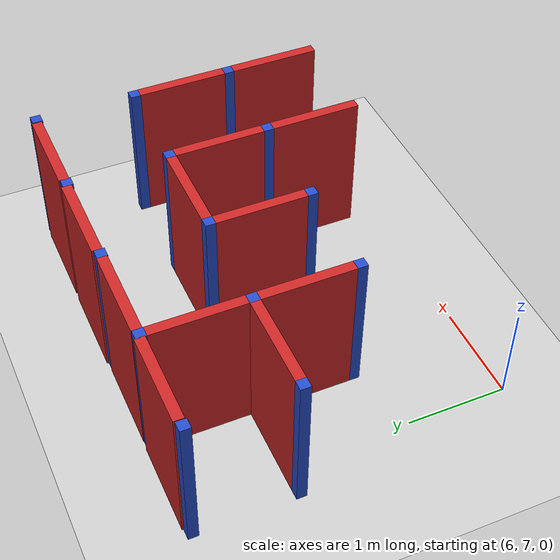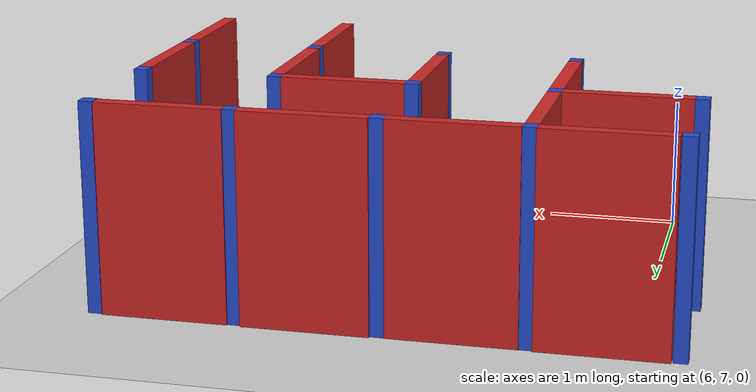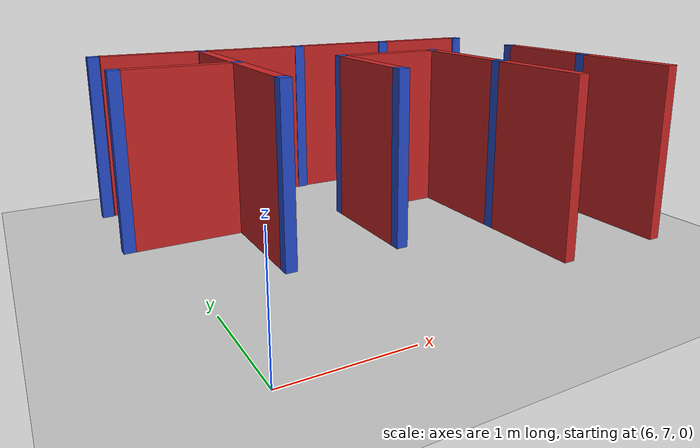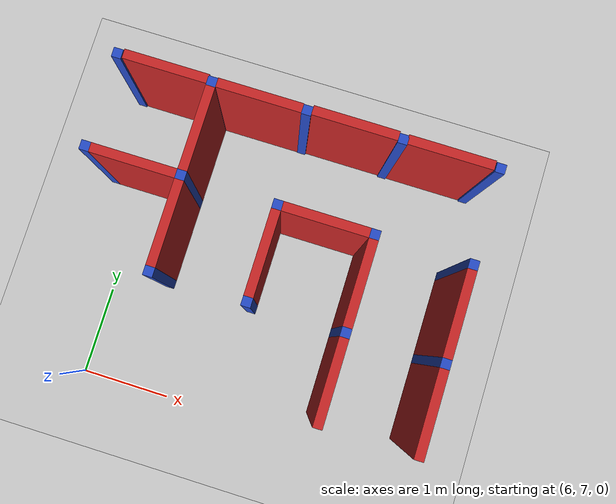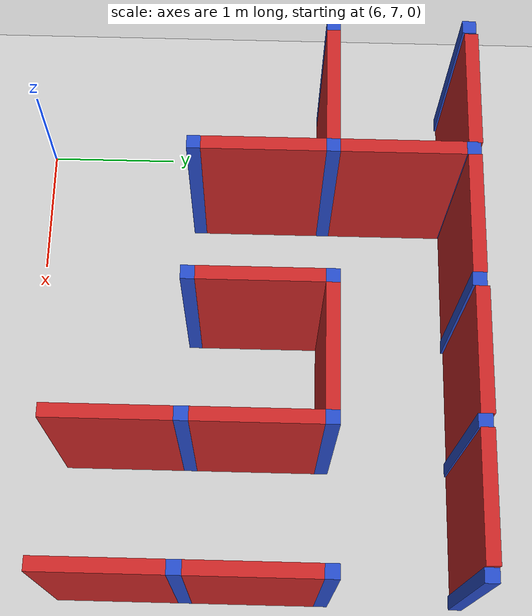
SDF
<sdf version="1.7">
 <world name="default">
  <model name="ground_plane">
   <static>1</static>
   <link name="link">
    <collision name="collision">
     <geometry><plane><normal>0 0 1</normal><size>100 100</size></plane></geometry>
     <surface><friction><ode><mu>100</mu><mu2>50</mu2></ode></friction></surface>
    </collision>
    <visual name="visual">
     <cast_shadows>0</cast_shadows>
     <geometry><plane><normal>0 0 1</normal><size>100 100</size></plane></geometry>
     <material>
      <script><uri>file://media/materials/scripts/gazebo.material</uri><name>Gazebo/Grey</name></script>
     </material>
    </visual>
   </link>
  </model>
  <model name="maze_demo">
   <link name="Joint_11_-5">
    <pose>11 -5 0 0 -0 0</pose>
    <visual name="Wall_2_Visual">
     <pose>0 0 0.75 0 -0 0</pose>
     <geometry><box><size>0.1 0.1 1.5</size></box></geometry>
     <material>
      <script><uri>file://media/materials/scripts/gazebo.material</uri><name>Gazebo/Blue</name></script>
      <ambient>0.996078 0.47451 0.0196078 1</ambient>
      <shader type="pixel"/>
     </material>
     <meta><layer>0</layer></meta>
    </visual>
    <collision name="Wall_2_Collision">
     <pose>0 0 0.75 0 -0 0</pose>
     <geometry><box><size>0.1 0.1 1.5</size></box></geometry>
     <surface>
      <friction>
       <ode><mu>1</mu><mu2>1</mu2><fdir1>0 0 0</fdir1><slip1>0</slip1><slip2>0</slip2></ode>
       <torsional>
        <coefficient>1</coefficient>
        <patch_radius>0</patch_radius>
        <surface_radius>0</surface_radius>
        <use_patch_radius>1</use_patch_radius>
        <ode><slip>0</slip></ode>
       </torsional>
      </friction>
      <bounce><restitution_coefficient>0</restitution_coefficient><threshold>1e+06</threshold></bounce>
      <contact>
       <collide_without_contact>0</collide_without_contact>
       <collide_without_contact_bitmask>1</collide_without_contact_bitmask>
       <collide_bitmask>1</collide_bitmask>
       <ode>
        <soft_cfm>0</soft_cfm>
        <soft_erp>0.2</soft_erp>
        <kp>1e+13</kp>
        <kd>1</kd>
        <max_vel>0.01</max_vel>
        <min_depth>0</min_depth>
       </ode>
       <bullet>
        <split_impulse>1</split_impulse>
        <split_impulse_penetration_threshold>-0.01</split_impulse_penetration_threshold>
        <soft_cfm>0</soft_cfm>
        <soft_erp>0.2</soft_erp>
        <kp>1e+13</kp>
        <kd>1</kd>
       </bullet>
      </contact>
     </surface>
    </collision>
   </link>
   <link name="Joint_11_-6">
    <pose>11 -6 0 0 -0 0</pose>
    <visual name="Wall_2_Visual">
     <pose>0 0 0.75 0 -0 0</pose>
     <geometry><box><size>0.1 0.1 1.5</size></box></geometry>
     <material>
      <script><uri>file://media/materials/scripts/gazebo.material</uri><name>Gazebo/Blue</name></script>
      <ambient>0.996078 0.47451 0.0196078 1</ambient>
      <shader type="pixel"/>
     </material>
     <meta><layer>0</layer></meta>
    </visual>
    <collision name="Wall_2_Collision">
     <pose>0 0 0.75 0 -0 0</pose>
     <geometry><box><size>0.1 0.1 1.5</size></box></geometry>
     <surface>
      <friction>
       <ode><mu>1</mu><mu2>1</mu2><fdir1>0 0 0</fdir1><slip1>0</slip1><slip2>0</slip2></ode>
       <torsional>
        <coefficient>1</coefficient>
        <patch_radius>0</patch_radius>
        <surface_radius>0</surface_radius>
        <use_patch_radius>1</use_patch_radius>
        <ode><slip>0</slip></ode>
       </torsional>
      </friction>
      <bounce><restitution_coefficient>0</restitution_coefficient><threshold>1e+06</threshold></bounce>
      <contact>
       <collide_without_contact>0</collide_without_contact>
       <collide_without_contact_bitmask>1</collide_without_contact_bitmask>
       <collide_bitmask>1</collide_bitmask>
       <ode>
        <soft_cfm>0</soft_cfm>
        <soft_erp>0.2</soft_erp>
        <kp>1e+13</kp>
        <kd>1</kd>
        <max_vel>0.01</max_vel>
        <min_depth>0</min_depth>
       </ode>
       <bullet>
        <split_impulse>1</split_impulse>
        <split_impulse_penetration_threshold>-0.01</split_impulse_penetration_threshold>
        <soft_cfm>0</soft_cfm>
        <soft_erp>0.2</soft_erp>
        <kp>1e+13</kp>
        <kd>1</kd>
       </bullet>
      </contact>
     </surface>
    </collision>
   </link>
   <link name="Joint_12_-5">
    <pose>12 -5 0 0 -0 0</pose>
    <visual name="Wall_2_Visual">
     <pose>0 0 0.75 0 -0 0</pose>
     <geometry><box><size>0.1 0.1 1.5</size></box></geometry>
     <material>
      <script><uri>file://media/materials/scripts/gazebo.material</uri><name>Gazebo/Blue</name></script>
      <ambient>0.996078 0.47451 0.0196078 1</ambient>
      <shader type="pixel"/>
     </material>
     <meta><layer>0</layer></meta>
    </visual>
    <collision name="Wall_2_Collision">
     <pose>0 0 0.75 0 -0 0</pose>
     <geometry><box><size>0.1 0.1 1.5</size></box></geometry>
     <surface>
      <friction>
       <ode><mu>1</mu><mu2>1</mu2><fdir1>0 0 0</fdir1><slip1>0</slip1><slip2>0</slip2></ode>
       <torsional>
        <coefficient>1</coefficient>
        <patch_radius>0</patch_radius>
        <surface_radius>0</surface_radius>
        <use_patch_radius>1</use_patch_radius>
        <ode><slip>0</slip></ode>
       </torsional>
      </friction>
      <bounce><restitution_coefficient>0</restitution_coefficient><threshold>1e+06</threshold></bounce>
      <contact>
       <collide_without_contact>0</collide_without_contact>
       <collide_without_contact_bitmask>1</collide_without_contact_bitmask>
       <collide_bitmask>1</collide_bitmask>
       <ode>
        <soft_cfm>0</soft_cfm>
        <soft_erp>0.2</soft_erp>
        <kp>1e+13</kp>
        <kd>1</kd>
        <max_vel>0.01</max_vel>
        <min_depth>0</min_depth>
       </ode>
       <bullet>
        <split_impulse>1</split_impulse>
        <split_impulse_penetration_threshold>-0.01</split_impulse_penetration_threshold>
        <soft_cfm>0</soft_cfm>
        <soft_erp>0.2</soft_erp>
        <kp>1e+13</kp>
        <kd>1</kd>
       </bullet>
      </contact>
     </surface>
    </collision>
   </link>
   <link name="Joint_12_-6">
    <pose>12 -6 0 0 -0 0</pose>
    <visual name="Wall_2_Visual">
     <pose>0 0 0.75 0 -0 0</pose>
     <geometry><box><size>0.1 0.1 1.5</size></box></geometry>
     <material>
      <script><uri>file://media/materials/scripts/gazebo.material</uri><name>Gazebo/Blue</name></script>
      <ambient>0.996078 0.47451 0.0196078 1</ambient>
      <shader type="pixel"/>
     </material>
     <meta><layer>0</layer></meta>
    </visual>
    <collision name="Wall_2_Collision">
     <pose>0 0 0.75 0 -0 0</pose>
     <geometry><box><size>0.1 0.1 1.5</size></box></geometry>
     <surface>
      <friction>
       <ode><mu>1</mu><mu2>1</mu2><fdir1>0 0 0</fdir1><slip1>0</slip1><slip2>0</slip2></ode>
       <torsional>
        <coefficient>1</coefficient>
        <patch_radius>0</patch_radius>
        <surface_radius>0</surface_radius>
        <use_patch_radius>1</use_patch_radius>
        <ode><slip>0</slip></ode>
       </torsional>
      </friction>
      <bounce><restitution_coefficient>0</restitution_coefficient><threshold>1e+06</threshold></bounce>
      <contact>
       <collide_without_contact>0</collide_without_contact>
       <collide_without_contact_bitmask>1</collide_without_contact_bitmask>
       <collide_bitmask>1</collide_bitmask>
       <ode>
        <soft_cfm>0</soft_cfm>
        <soft_erp>0.2</soft_erp>
        <kp>1e+13</kp>
        <kd>1</kd>
        <max_vel>0.01</max_vel>
        <min_depth>0</min_depth>
       </ode>
       <bullet>
        <split_impulse>1</split_impulse>
        <split_impulse_penetration_threshold>-0.01</split_impulse_penetration_threshold>
        <soft_cfm>0</soft_cfm>
        <soft_erp>0.2</soft_erp>
        <kp>1e+13</kp>
        <kd>1</kd>
       </bullet>
      </contact>
     </surface>
    </collision>
   </link>
   <link name="Joint_12_-7">
    <pose>12 -7 0 0 -0 0</pose>
    <visual name="Wall_2_Visual">
     <pose>0 0 0.75 0 -0 0</pose>
     <geometry><box><size>0.1 0.1 1.5</size></box></geometry>
     <material>
      <script><uri>file://media/materials/scripts/gazebo.material</uri><name>Gazebo/Blue</name></script>
      <ambient>0.996078 0.47451 0.0196078 1</ambient>
      <shader type="pixel"/>
     </material>
     <meta><layer>0</layer></meta>
    </visual>
    <collision name="Wall_2_Collision">
     <pose>0 0 0.75 0 -0 0</pose>
     <geometry><box><size>0.1 0.1 1.5</size></box></geometry>
     <surface>
      <friction>
       <ode><mu>1</mu><mu2>1</mu2><fdir1>0 0 0</fdir1><slip1>0</slip1><slip2>0</slip2></ode>
       <torsional>
        <coefficient>1</coefficient>
        <patch_radius>0</patch_radius>
        <surface_radius>0</surface_radius>
        <use_patch_radius>1</use_patch_radius>
        <ode><slip>0</slip></ode>
       </torsional>
      </friction>
      <bounce><restitution_coefficient>0</restitution_coefficient><threshold>1e+06</threshold></bounce>
      <contact>
       <collide_without_contact>0</collide_without_contact>
       <collide_without_contact_bitmask>1</collide_without_contact_bitmask>
       <collide_bitmask>1</collide_bitmask>
       <ode>
        <soft_cfm>0</soft_cfm>
        <soft_erp>0.2</soft_erp>
        <kp>1e+13</kp>
        <kd>1</kd>
        <max_vel>0.01</max_vel>
        <min_depth>0</min_depth>
       </ode>
       <bullet>
        <split_impulse>1</split_impulse>
        <split_impulse_penetration_threshold>-0.01</split_impulse_penetration_threshold>
        <soft_cfm>0</soft_cfm>
        <soft_erp>0.2</soft_erp>
        <kp>1e+13</kp>
        <kd>1</kd>
       </bullet>
      </contact>
     </surface>
    </collision>
   </link>
   <link name="Joint_13_-5">
    <pose>13 -5 0 0 -0 0</pose>
    <visual name="Wall_2_Visual">
     <pose>0 0 0.75 0 -0 0</pose>
     <geometry><box><size>0.1 0.1 1.5</size></box></geometry>
     <material>
      <script><uri>file://media/materials/scripts/gazebo.material</uri><name>Gazebo/Blue</name></script>
      <ambient>0.996078 0.47451 0.0196078 1</ambient>
      <shader type="pixel"/>
     </material>
     <meta><layer>0</layer></meta>
    </visual>
    <collision name="Wall_2_Collision">
     <pose>0 0 0.75 0 -0 0</pose>
     <geometry><box><size>0.1 0.1 1.5</size></box></geometry>
     <surface>
      <friction>
       <ode><mu>1</mu><mu2>1</mu2><fdir1>0 0 0</fdir1><slip1>0</slip1><slip2>0</slip2></ode>
       <torsional>
        <coefficient>1</coefficient>
        <patch_radius>0</patch_radius>
        <surface_radius>0</surface_radius>
        <use_patch_radius>1</use_patch_radius>
        <ode><slip>0</slip></ode>
       </torsional>
      </friction>
      <bounce><restitution_coefficient>0</restitution_coefficient><threshold>1e+06</threshold></bounce>
      <contact>
       <collide_without_contact>0</collide_without_contact>
       <collide_without_contact_bitmask>1</collide_without_contact_bitmask>
       <collide_bitmask>1</collide_bitmask>
       <ode>
        <soft_cfm>0</soft_cfm>
        <soft_erp>0.2</soft_erp>
        <kp>1e+13</kp>
        <kd>1</kd>
        <max_vel>0.01</max_vel>
        <min_depth>0</min_depth>
       </ode>
       <bullet>
        <split_impulse>1</split_impulse>
        <split_impulse_penetration_threshold>-0.01</split_impulse_penetration_threshold>
        <soft_cfm>0</soft_cfm>
        <soft_erp>0.2</soft_erp>
        <kp>1e+13</kp>
        <kd>1</kd>
       </bullet>
      </contact>
     </surface>
    </collision>
   </link>
   <link name="Joint_13_-6">
    <pose>13 -6 0 0 -0 0</pose>
    <visual name="Wall_2_Visual">
     <pose>0 0 0.75 0 -0 0</pose>
     <geometry><box><size>0.1 0.1 1.5</size></box></geometry>
     <material>
      <script><uri>file://media/materials/scripts/gazebo.material</uri><name>Gazebo/Blue</name></script>
      <ambient>0.996078 0.47451 0.0196078 1</ambient>
      <shader type="pixel"/>
     </material>
     <meta><layer>0</layer></meta>
    </visual>
    <collision name="Wall_2_Collision">
     <pose>0 0 0.75 0 -0 0</pose>
     <geometry><box><size>0.1 0.1 1.5</size></box></geometry>
     <surface>
      <friction>
       <ode><mu>1</mu><mu2>1</mu2><fdir1>0 0 0</fdir1><slip1>0</slip1><slip2>0</slip2></ode>
       <torsional>
        <coefficient>1</coefficient>
        <patch_radius>0</patch_radius>
        <surface_radius>0</surface_radius>
        <use_patch_radius>1</use_patch_radius>
        <ode><slip>0</slip></ode>
       </torsional>
      </friction>
      <bounce><restitution_coefficient>0</restitution_coefficient><threshold>1e+06</threshold></bounce>
      <contact>
       <collide_without_contact>0</collide_without_contact>
       <collide_without_contact_bitmask>1</collide_without_contact_bitmask>
       <collide_bitmask>1</collide_bitmask>
       <ode>
        <soft_cfm>0</soft_cfm>
        <soft_erp>0.2</soft_erp>
        <kp>1e+13</kp>
        <kd>1</kd>
        <max_vel>0.01</max_vel>
        <min_depth>0</min_depth>
       </ode>
       <bullet>
        <split_impulse>1</split_impulse>
        <split_impulse_penetration_threshold>-0.01</split_impulse_penetration_threshold>
        <soft_cfm>0</soft_cfm>
        <soft_erp>0.2</soft_erp>
        <kp>1e+13</kp>
        <kd>1</kd>
       </bullet>
      </contact>
     </surface>
    </collision>
   </link>
   <link name="Joint_13_-7">
    <pose>13 -7 0 0 -0 0</pose>
    <visual name="Wall_2_Visual">
     <pose>0 0 0.75 0 -0 0</pose>
     <geometry><box><size>0.1 0.1 1.5</size></box></geometry>
     <material>
      <script><uri>file://media/materials/scripts/gazebo.material</uri><name>Gazebo/Blue</name></script>
      <ambient>0.996078 0.47451 0.0196078 1</ambient>
      <shader type="pixel"/>
     </material>
     <meta><layer>0</layer></meta>
    </visual>
    <collision name="Wall_2_Collision">
     <pose>0 0 0.75 0 -0 0</pose>
     <geometry><box><size>0.1 0.1 1.5</size></box></geometry>
     <surface>
      <friction>
       <ode><mu>1</mu><mu2>1</mu2><fdir1>0 0 0</fdir1><slip1>0</slip1><slip2>0</slip2></ode>
       <torsional>
        <coefficient>1</coefficient>
        <patch_radius>0</patch_radius>
        <surface_radius>0</surface_radius>
        <use_patch_radius>1</use_patch_radius>
        <ode><slip>0</slip></ode>
       </torsional>
      </friction>
      <bounce><restitution_coefficient>0</restitution_coefficient><threshold>1e+06</threshold></bounce>
      <contact>
       <collide_without_contact>0</collide_without_contact>
       <collide_without_contact_bitmask>1</collide_without_contact_bitmask>
       <collide_bitmask>1</collide_bitmask>
       <ode>
        <soft_cfm>0</soft_cfm>
        <soft_erp>0.2</soft_erp>
        <kp>1e+13</kp>
        <kd>1</kd>
        <max_vel>0.01</max_vel>
        <min_depth>0</min_depth>
       </ode>
       <bullet>
        <split_impulse>1</split_impulse>
        <split_impulse_penetration_threshold>-0.01</split_impulse_penetration_threshold>
        <soft_cfm>0</soft_cfm>
        <soft_erp>0.2</soft_erp>
        <kp>1e+13</kp>
        <kd>1</kd>
       </bullet>
      </contact>
     </surface>
    </collision>
   </link>
   <link name="Joint_14_-5">
    <pose>14 -5 0 0 -0 0</pose>
    <visual name="Wall_2_Visual">
     <pose>0 0 0.75 0 -0 0</pose>
     <geometry><box><size>0.1 0.1 1.5</size></box></geometry>
     <material>
      <script><uri>file://media/materials/scripts/gazebo.material</uri><name>Gazebo/Blue</name></script>
      <ambient>0.996078 0.47451 0.0196078 1</ambient>
      <shader type="pixel"/>
     </material>
     <meta><layer>0</layer></meta>
    </visual>
    <collision name="Wall_2_Collision">
     <pose>0 0 0.75 0 -0 0</pose>
     <geometry><box><size>0.1 0.1 1.5</size></box></geometry>
     <surface>
      <friction>
       <ode><mu>1</mu><mu2>1</mu2><fdir1>0 0 0</fdir1><slip1>0</slip1><slip2>0</slip2></ode>
       <torsional>
        <coefficient>1</coefficient>
        <patch_radius>0</patch_radius>
        <surface_radius>0</surface_radius>
        <use_patch_radius>1</use_patch_radius>
        <ode><slip>0</slip></ode>
       </torsional>
      </friction>
      <bounce><restitution_coefficient>0</restitution_coefficient><threshold>1e+06</threshold></bounce>
      <contact>
       <collide_without_contact>0</collide_without_contact>
       <collide_without_contact_bitmask>1</collide_without_contact_bitmask>
       <collide_bitmask>1</collide_bitmask>
       <ode>
        <soft_cfm>0</soft_cfm>
        <soft_erp>0.2</soft_erp>
        <kp>1e+13</kp>
        <kd>1</kd>
        <max_vel>0.01</max_vel>
        <min_depth>0</min_depth>
       </ode>
       <bullet>
        <split_impulse>1</split_impulse>
        <split_impulse_penetration_threshold>-0.01</split_impulse_penetration_threshold>
        <soft_cfm>0</soft_cfm>
        <soft_erp>0.2</soft_erp>
        <kp>1e+13</kp>
        <kd>1</kd>
       </bullet>
      </contact>
     </surface>
    </collision>
   </link>
   <link name="Joint_14_-6">
    <pose>14 -6 0 0 -0 0</pose>
    <visual name="Wall_2_Visual">
     <pose>0 0 0.75 0 -0 0</pose>
     <geometry><box><size>0.1 0.1 1.5</size></box></geometry>
     <material>
      <script><uri>file://media/materials/scripts/gazebo.material</uri><name>Gazebo/Blue</name></script>
      <ambient>0.996078 0.47451 0.0196078 1</ambient>
      <shader type="pixel"/>
     </material>
     <meta><layer>0</layer></meta>
    </visual>
    <collision name="Wall_2_Collision">
     <pose>0 0 0.75 0 -0 0</pose>
     <geometry><box><size>0.1 0.1 1.5</size></box></geometry>
     <surface>
      <friction>
       <ode><mu>1</mu><mu2>1</mu2><fdir1>0 0 0</fdir1><slip1>0</slip1><slip2>0</slip2></ode>
       <torsional>
        <coefficient>1</coefficient>
        <patch_radius>0</patch_radius>
        <surface_radius>0</surface_radius>
        <use_patch_radius>1</use_patch_radius>
        <ode><slip>0</slip></ode>
       </torsional>
      </friction>
      <bounce><restitution_coefficient>0</restitution_coefficient><threshold>1e+06</threshold></bounce>
      <contact>
       <collide_without_contact>0</collide_without_contact>
       <collide_without_contact_bitmask>1</collide_without_contact_bitmask>
       <collide_bitmask>1</collide_bitmask>
       <ode>
        <soft_cfm>0</soft_cfm>
        <soft_erp>0.2</soft_erp>
        <kp>1e+13</kp>
        <kd>1</kd>
        <max_vel>0.01</max_vel>
        <min_depth>0</min_depth>
       </ode>
       <bullet>
        <split_impulse>1</split_impulse>
        <split_impulse_penetration_threshold>-0.01</split_impulse_penetration_threshold>
        <soft_cfm>0</soft_cfm>
        <soft_erp>0.2</soft_erp>
        <kp>1e+13</kp>
        <kd>1</kd>
       </bullet>
      </contact>
     </surface>
    </collision>
   </link>
   <link name="Joint_14_-7">
    <pose>14 -7 0 0 -0 0</pose>
    <visual name="Wall_2_Visual">
     <pose>0 0 0.75 0 -0 0</pose>
     <geometry><box><size>0.1 0.1 1.5</size></box></geometry>
     <material>
      <script><uri>file://media/materials/scripts/gazebo.material</uri><name>Gazebo/Blue</name></script>
      <ambient>0.996078 0.47451 0.0196078 1</ambient>
      <shader type="pixel"/>
     </material>
     <meta><layer>0</layer></meta>
    </visual>
    <collision name="Wall_2_Collision">
     <pose>0 0 0.75 0 -0 0</pose>
     <geometry><box><size>0.1 0.1 1.5</size></box></geometry>
     <surface>
      <friction>
       <ode><mu>1</mu><mu2>1</mu2><fdir1>0 0 0</fdir1><slip1>0</slip1><slip2>0</slip2></ode>
       <torsional>
        <coefficient>1</coefficient>
        <patch_radius>0</patch_radius>
        <surface_radius>0</surface_radius>
        <use_patch_radius>1</use_patch_radius>
        <ode><slip>0</slip></ode>
       </torsional>
      </friction>
      <bounce><restitution_coefficient>0</restitution_coefficient><threshold>1e+06</threshold></bounce>
      <contact>
       <collide_without_contact>0</collide_without_contact>
       <collide_without_contact_bitmask>1</collide_without_contact_bitmask>
       <collide_bitmask>1</collide_bitmask>
       <ode>
        <soft_cfm>0</soft_cfm>
        <soft_erp>0.2</soft_erp>
        <kp>1e+13</kp>
        <kd>1</kd>
        <max_vel>0.01</max_vel>
        <min_depth>0</min_depth>
       </ode>
       <bullet>
        <split_impulse>1</split_impulse>
        <split_impulse_penetration_threshold>-0.01</split_impulse_penetration_threshold>
        <soft_cfm>0</soft_cfm>
        <soft_erp>0.2</soft_erp>
        <kp>1e+13</kp>
        <kd>1</kd>
       </bullet>
      </contact>
     </surface>
    </collision>
   </link>
   <link name="Joint_15_-5">
    <pose>15 -5 0 0 -0 0</pose>
    <visual name="Wall_2_Visual">
     <pose>0 0 0.75 0 -0 0</pose>
     <geometry><box><size>0.1 0.1 1.5</size></box></geometry>
     <material>
      <script><uri>file://media/materials/scripts/gazebo.material</uri><name>Gazebo/Blue</name></script>
      <ambient>0.996078 0.47451 0.0196078 1</ambient>
      <shader type="pixel"/>
     </material>
     <meta><layer>0</layer></meta>
    </visual>
    <collision name="Wall_2_Collision">
     <pose>0 0 0.75 0 -0 0</pose>
     <geometry><box><size>0.1 0.1 1.5</size></box></geometry>
     <surface>
      <friction>
       <ode><mu>1</mu><mu2>1</mu2><fdir1>0 0 0</fdir1><slip1>0</slip1><slip2>0</slip2></ode>
       <torsional>
        <coefficient>1</coefficient>
        <patch_radius>0</patch_radius>
        <surface_radius>0</surface_radius>
        <use_patch_radius>1</use_patch_radius>
        <ode><slip>0</slip></ode>
       </torsional>
      </friction>
      <bounce><restitution_coefficient>0</restitution_coefficient><threshold>1e+06</threshold></bounce>
      <contact>
       <collide_without_contact>0</collide_without_contact>
       <collide_without_contact_bitmask>1</collide_without_contact_bitmask>
       <collide_bitmask>1</collide_bitmask>
       <ode>
        <soft_cfm>0</soft_cfm>
        <soft_erp>0.2</soft_erp>
        <kp>1e+13</kp>
        <kd>1</kd>
        <max_vel>0.01</max_vel>
        <min_depth>0</min_depth>
       </ode>
       <bullet>
        <split_impulse>1</split_impulse>
        <split_impulse_penetration_threshold>-0.01</split_impulse_penetration_threshold>
        <soft_cfm>0</soft_cfm>
        <soft_erp>0.2</soft_erp>
        <kp>1e+13</kp>
        <kd>1</kd>
       </bullet>
      </contact>
     </surface>
    </collision>
   </link>
   <link name="Joint_15_-6">
    <pose>15 -6 0 0 -0 0</pose>
    <visual name="Wall_2_Visual">
     <pose>0 0 0.75 0 -0 0</pose>
     <geometry><box><size>0.1 0.1 1.5</size></box></geometry>
     <material>
      <script><uri>file://media/materials/scripts/gazebo.material</uri><name>Gazebo/Blue</name></script>
      <ambient>0.996078 0.47451 0.0196078 1</ambient>
      <shader type="pixel"/>
     </material>
     <meta><layer>0</layer></meta>
    </visual>
    <collision name="Wall_2_Collision">
     <pose>0 0 0.75 0 -0 0</pose>
     <geometry><box><size>0.1 0.1 1.5</size></box></geometry>
     <surface>
      <friction>
       <ode><mu>1</mu><mu2>1</mu2><fdir1>0 0 0</fdir1><slip1>0</slip1><slip2>0</slip2></ode>
       <torsional>
        <coefficient>1</coefficient>
        <patch_radius>0</patch_radius>
        <surface_radius>0</surface_radius>
        <use_patch_radius>1</use_patch_radius>
        <ode><slip>0</slip></ode>
       </torsional>
      </friction>
      <bounce><restitution_coefficient>0</restitution_coefficient><threshold>1e+06</threshold></bounce>
      <contact>
       <collide_without_contact>0</collide_without_contact>
       <collide_without_contact_bitmask>1</collide_without_contact_bitmask>
       <collide_bitmask>1</collide_bitmask>
       <ode>
        <soft_cfm>0</soft_cfm>
        <soft_erp>0.2</soft_erp>
        <kp>1e+13</kp>
        <kd>1</kd>
        <max_vel>0.01</max_vel>
        <min_depth>0</min_depth>
       </ode>
       <bullet>
        <split_impulse>1</split_impulse>
        <split_impulse_penetration_threshold>-0.01</split_impulse_penetration_threshold>
        <soft_cfm>0</soft_cfm>
        <soft_erp>0.2</soft_erp>
        <kp>1e+13</kp>
        <kd>1</kd>
       </bullet>
      </contact>
     </surface>
    </collision>
   </link>
   <link name="Joint_15_-7">
    <pose>15 -7 0 0 -0 0</pose>
    <visual name="Wall_2_Visual">
     <pose>0 0 0.75 0 -0 0</pose>
     <geometry><box><size>0.1 0.1 1.5</size></box></geometry>
     <material>
      <script><uri>file://media/materials/scripts/gazebo.material</uri><name>Gazebo/Blue</name></script>
      <ambient>0.996078 0.47451 0.0196078 1</ambient>
      <shader type="pixel"/>
     </material>
     <meta><layer>0</layer></meta>
    </visual>
    <collision name="Wall_2_Collision">
     <pose>0 0 0.75 0 -0 0</pose>
     <geometry><box><size>0.1 0.1 1.5</size></box></geometry>
     <surface>
      <friction>
       <ode><mu>1</mu><mu2>1</mu2><fdir1>0 0 0</fdir1><slip1>0</slip1><slip2>0</slip2></ode>
       <torsional>
        <coefficient>1</coefficient>
        <patch_radius>0</patch_radius>
        <surface_radius>0</surface_radius>
        <use_patch_radius>1</use_patch_radius>
        <ode><slip>0</slip></ode>
       </torsional>
      </friction>
      <bounce><restitution_coefficient>0</restitution_coefficient><threshold>1e+06</threshold></bounce>
      <contact>
       <collide_without_contact>0</collide_without_contact>
       <collide_without_contact_bitmask>1</collide_without_contact_bitmask>
       <collide_bitmask>1</collide_bitmask>
       <ode>
        <soft_cfm>0</soft_cfm>
        <soft_erp>0.2</soft_erp>
        <kp>1e+13</kp>
        <kd>1</kd>
        <max_vel>0.01</max_vel>
        <min_depth>0</min_depth>
       </ode>
       <bullet>
        <split_impulse>1</split_impulse>
        <split_impulse_penetration_threshold>-0.01</split_impulse_penetration_threshold>
        <soft_cfm>0</soft_cfm>
        <soft_erp>0.2</soft_erp>
        <kp>1e+13</kp>
        <kd>1</kd>
       </bullet>
      </contact>
     </surface>
    </collision>
   </link>
   <link name="Wall_10_3_h">
    <pose>11.5077 -4.98672 0 0 -0 0</pose>
    <visual name="Wall_0_Visual">
     <pose>0 0 0.75 0 -0 0</pose>
     <geometry><box><size>0.9 0.1 1.5</size></box></geometry>
     <material>
      <script><uri>file://media/materials/scripts/gazebo.material</uri><name>Gazebo/Red</name></script>
      <ambient>0.921569 0.807843 0.615686 1</ambient>
      <shader type="pixel"/>
     </material>
     <meta><layer>0</layer></meta>
    </visual>
    <collision name="Wall_0_Collision">
     <pose>0 0 0.75 0 -0 0</pose>
     <geometry><box><size>0.9 0.1 1.5</size></box></geometry>
     <surface>
      <friction>
       <ode><mu>1</mu><mu2>1</mu2><fdir1>0 0 0</fdir1><slip1>0</slip1><slip2>0</slip2></ode>
       <torsional>
        <coefficient>1</coefficient>
        <patch_radius>0</patch_radius>
        <surface_radius>0</surface_radius>
        <use_patch_radius>1</use_patch_radius>
        <ode><slip>0</slip></ode>
       </torsional>
      </friction>
      <bounce><restitution_coefficient>0</restitution_coefficient><threshold>1e+06</threshold></bounce>
      <contact>
       <collide_without_contact>0</collide_without_contact>
       <collide_without_contact_bitmask>1</collide_without_contact_bitmask>
       <collide_bitmask>1</collide_bitmask>
       <ode>
        <soft_cfm>0</soft_cfm>
        <soft_erp>0.2</soft_erp>
        <kp>1e+13</kp>
        <kd>1</kd>
        <max_vel>0.01</max_vel>
        <min_depth>0</min_depth>
       </ode>
       <bullet>
        <split_impulse>1</split_impulse>
        <split_impulse_penetration_threshold>-0.01</split_impulse_penetration_threshold>
        <soft_cfm>0</soft_cfm>
        <soft_erp>0.2</soft_erp>
        <kp>1e+13</kp>
        <kd>1</kd>
       </bullet>
      </contact>
     </surface>
    </collision>
   </link>
   <link name="Wall_11_6_h">
    <pose>11.5 -6 0 0 -0 0</pose>
    <visual name="Wall_0_Visual">
     <pose>0 0 0.75 0 -0 0</pose>
     <geometry><box><size>0.9 0.1 1.5</size></box></geometry>
     <material>
      <script><uri>file://media/materials/scripts/gazebo.material</uri><name>Gazebo/Red</name></script>
      <ambient>0.921569 0.807843 0.615686 1</ambient>
      <shader type="pixel"/>
     </material>
     <meta><layer>0</layer></meta>
    </visual>
    <collision name="Wall_0_Collision">
     <pose>0 0 0.75 0 -0 0</pose>
     <geometry><box><size>0.9 0.1 1.5</size></box></geometry>
     <surface>
      <friction>
       <ode><mu>1</mu><mu2>1</mu2><fdir1>0 0 0</fdir1><slip1>0</slip1><slip2>0</slip2></ode>
       <torsional>
        <coefficient>1</coefficient>
        <patch_radius>0</patch_radius>
        <surface_radius>0</surface_radius>
        <use_patch_radius>1</use_patch_radius>
        <ode><slip>0</slip></ode>
       </torsional>
      </friction>
      <bounce><restitution_coefficient>0</restitution_coefficient><threshold>1e+06</threshold></bounce>
      <contact>
       <collide_without_contact>0</collide_without_contact>
       <collide_without_contact_bitmask>1</collide_without_contact_bitmask>
       <collide_bitmask>1</collide_bitmask>
       <ode>
        <soft_cfm>0</soft_cfm>
        <soft_erp>0.2</soft_erp>
        <kp>1e+13</kp>
        <kd>1</kd>
        <max_vel>0.01</max_vel>
        <min_depth>0</min_depth>
       </ode>
       <bullet>
        <split_impulse>1</split_impulse>
        <split_impulse_penetration_threshold>-0.01</split_impulse_penetration_threshold>
        <soft_cfm>0</soft_cfm>
        <soft_erp>0.2</soft_erp>
        <kp>1e+13</kp>
        <kd>1</kd>
       </bullet>
      </contact>
     </surface>
    </collision>
   </link>
   <link name="Wall_12_4_h">
    <pose>12.5 -4.99443 0 0 -0 0</pose>
    <visual name="Wall_0_Visual">
     <pose>0 0 0.75 0 -0 0</pose>
     <geometry><box><size>0.9 0.1 1.5</size></box></geometry>
     <material>
      <script><uri>file://media/materials/scripts/gazebo.material</uri><name>Gazebo/Red</name></script>
      <ambient>0.921569 0.807843 0.615686 1</ambient>
      <shader type="pixel"/>
     </material>
     <meta><layer>0</layer></meta>
    </visual>
    <collision name="Wall_0_Collision">
     <pose>0 0 0.75 0 -0 0</pose>
     <geometry><box><size>0.9 0.1 1.5</size></box></geometry>
     <surface>
      <friction>
       <ode><mu>1</mu><mu2>1</mu2><fdir1>0 0 0</fdir1><slip1>0</slip1><slip2>0</slip2></ode>
       <torsional>
        <coefficient>1</coefficient>
        <patch_radius>0</patch_radius>
        <surface_radius>0</surface_radius>
        <use_patch_radius>1</use_patch_radius>
        <ode><slip>0</slip></ode>
       </torsional>
      </friction>
      <bounce><restitution_coefficient>0</restitution_coefficient><threshold>1e+06</threshold></bounce>
      <contact>
       <collide_without_contact>0</collide_without_contact>
       <collide_without_contact_bitmask>1</collide_without_contact_bitmask>
       <collide_bitmask>1</collide_bitmask>
       <ode>
        <soft_cfm>0</soft_cfm>
        <soft_erp>0.2</soft_erp>
        <kp>1e+13</kp>
        <kd>1</kd>
        <max_vel>0.01</max_vel>
        <min_depth>0</min_depth>
       </ode>
       <bullet>
        <split_impulse>1</split_impulse>
        <split_impulse_penetration_threshold>-0.01</split_impulse_penetration_threshold>
        <soft_cfm>0</soft_cfm>
        <soft_erp>0.2</soft_erp>
        <kp>1e+13</kp>
        <kd>1</kd>
       </bullet>
      </contact>
     </surface>
    </collision>
   </link>
   <link name="Wall_12_5_v">
    <pose>12 -5.5 0 0 -0 1.5708</pose>
    <visual name="Wall_0_Visual">
     <pose>0 0 0.75 0 -0 0</pose>
     <geometry><box><size>0.9 0.1 1.5</size></box></geometry>
     <material>
      <script><uri>file://media/materials/scripts/gazebo.material</uri><name>Gazebo/Red</name></script>
      <ambient>0.921569 0.807843 0.615686 1</ambient>
      <shader type="pixel"/>
     </material>
     <meta><layer>0</layer></meta>
    </visual>
    <collision name="Wall_0_Collision">
     <pose>0 0 0.75 0 -0 0</pose>
     <geometry><box><size>0.9 0.1 1.5</size></box></geometry>
     <surface>
      <friction>
       <ode><mu>1</mu><mu2>1</mu2><fdir1>0 0 0</fdir1><slip1>0</slip1><slip2>0</slip2></ode>
       <torsional>
        <coefficient>1</coefficient>
        <patch_radius>0</patch_radius>
        <surface_radius>0</surface_radius>
        <use_patch_radius>1</use_patch_radius>
        <ode><slip>0</slip></ode>
       </torsional>
      </friction>
      <bounce><restitution_coefficient>0</restitution_coefficient><threshold>1e+06</threshold></bounce>
      <contact>
       <collide_without_contact>0</collide_without_contact>
       <collide_without_contact_bitmask>1</collide_without_contact_bitmask>
       <collide_bitmask>1</collide_bitmask>
       <ode>
        <soft_cfm>0</soft_cfm>
        <soft_erp>0.2</soft_erp>
        <kp>1e+13</kp>
        <kd>1</kd>
        <max_vel>0.01</max_vel>
        <min_depth>0</min_depth>
       </ode>
       <bullet>
        <split_impulse>1</split_impulse>
        <split_impulse_penetration_threshold>-0.01</split_impulse_penetration_threshold>
        <soft_cfm>0</soft_cfm>
        <soft_erp>0.2</soft_erp>
        <kp>1e+13</kp>
        <kd>1</kd>
       </bullet>
      </contact>
     </surface>
    </collision>
   </link>
   <link name="Wall_12_6_v">
    <pose>12 -6.5 0 0 -0 1.5708</pose>
    <visual name="Wall_0_Visual">
     <pose>0 0 0.75 0 -0 0</pose>
     <geometry><box><size>0.9 0.1 1.5</size></box></geometry>
     <material>
      <script><uri>file://media/materials/scripts/gazebo.material</uri><name>Gazebo/Red</name></script>
      <ambient>0.921569 0.807843 0.615686 1</ambient>
      <shader type="pixel"/>
     </material>
     <meta><layer>0</layer></meta>
    </visual>
    <collision name="Wall_0_Collision">
     <pose>0 0 0.75 0 -0 0</pose>
     <geometry><box><size>0.9 0.1 1.5</size></box></geometry>
     <surface>
      <friction>
       <ode><mu>1</mu><mu2>1</mu2><fdir1>0 0 0</fdir1><slip1>0</slip1><slip2>0</slip2></ode>
       <torsional>
        <coefficient>1</coefficient>
        <patch_radius>0</patch_radius>
        <surface_radius>0</surface_radius>
        <use_patch_radius>1</use_patch_radius>
        <ode><slip>0</slip></ode>
       </torsional>
      </friction>
      <bounce><restitution_coefficient>0</restitution_coefficient><threshold>1e+06</threshold></bounce>
      <contact>
       <collide_without_contact>0</collide_without_contact>
       <collide_without_contact_bitmask>1</collide_without_contact_bitmask>
       <collide_bitmask>1</collide_bitmask>
       <ode>
        <soft_cfm>0</soft_cfm>
        <soft_erp>0.2</soft_erp>
        <kp>1e+13</kp>
        <kd>1</kd>
        <max_vel>0.01</max_vel>
        <min_depth>0</min_depth>
       </ode>
       <bullet>
        <split_impulse>1</split_impulse>
        <split_impulse_penetration_threshold>-0.01</split_impulse_penetration_threshold>
        <soft_cfm>0</soft_cfm>
        <soft_erp>0.2</soft_erp>
        <kp>1e+13</kp>
        <kd>1</kd>
       </bullet>
      </contact>
     </surface>
    </collision>
   </link>
   <link name="Wall_13_3_h">
    <pose>13.5 -4.9821 0 0 -0 0</pose>
    <visual name="Wall_0_Visual">
     <pose>0 0 0.75 0 -0 0</pose>
     <geometry><box><size>0.9 0.1 1.5</size></box></geometry>
     <material>
      <script><uri>file://media/materials/scripts/gazebo.material</uri><name>Gazebo/Red</name></script>
      <ambient>0.921569 0.807843 0.615686 1</ambient>
      <shader type="pixel"/>
     </material>
     <meta><layer>0</layer></meta>
    </visual>
    <collision name="Wall_0_Collision">
     <pose>0 0 0.75 0 -0 0</pose>
     <geometry><box><size>0.9 0.1 1.5</size></box></geometry>
     <surface>
      <friction>
       <ode><mu>1</mu><mu2>1</mu2><fdir1>0 0 0</fdir1><slip1>0</slip1><slip2>0</slip2></ode>
       <torsional>
        <coefficient>1</coefficient>
        <patch_radius>0</patch_radius>
        <surface_radius>0</surface_radius>
        <use_patch_radius>1</use_patch_radius>
        <ode><slip>0</slip></ode>
       </torsional>
      </friction>
      <bounce><restitution_coefficient>0</restitution_coefficient><threshold>1e+06</threshold></bounce>
      <contact>
       <collide_without_contact>0</collide_without_contact>
       <collide_without_contact_bitmask>1</collide_without_contact_bitmask>
       <collide_bitmask>1</collide_bitmask>
       <ode>
        <soft_cfm>0</soft_cfm>
        <soft_erp>0.2</soft_erp>
        <kp>1e+13</kp>
        <kd>1</kd>
        <max_vel>0.01</max_vel>
        <min_depth>0</min_depth>
       </ode>
       <bullet>
        <split_impulse>1</split_impulse>
        <split_impulse_penetration_threshold>-0.01</split_impulse_penetration_threshold>
        <soft_cfm>0</soft_cfm>
        <soft_erp>0.2</soft_erp>
        <kp>1e+13</kp>
        <kd>1</kd>
       </bullet>
      </contact>
     </surface>
    </collision>
   </link>
   <link name="Wall_13_6_h">
    <pose>13.5 -6 0 0 -0 0</pose>
    <visual name="Wall_0_Visual">
     <pose>0 0 0.75 0 -0 0</pose>
     <geometry><box><size>0.9 0.1 1.5</size></box></geometry>
     <material>
      <script><uri>file://media/materials/scripts/gazebo.material</uri><name>Gazebo/Red</name></script>
      <ambient>0.921569 0.807843 0.615686 1</ambient>
      <shader type="pixel"/>
     </material>
     <meta><layer>0</layer></meta>
    </visual>
    <collision name="Wall_0_Collision">
     <pose>0 0 0.75 0 -0 0</pose>
     <geometry><box><size>0.9 0.1 1.5</size></box></geometry>
     <surface>
      <friction>
       <ode><mu>1</mu><mu2>1</mu2><fdir1>0 0 0</fdir1><slip1>0</slip1><slip2>0</slip2></ode>
       <torsional>
        <coefficient>1</coefficient>
        <patch_radius>0</patch_radius>
        <surface_radius>0</surface_radius>
        <use_patch_radius>1</use_patch_radius>
        <ode><slip>0</slip></ode>
       </torsional>
      </friction>
      <bounce><restitution_coefficient>0</restitution_coefficient><threshold>1e+06</threshold></bounce>
      <contact>
       <collide_without_contact>0</collide_without_contact>
       <collide_without_contact_bitmask>1</collide_without_contact_bitmask>
       <collide_bitmask>1</collide_bitmask>
       <ode>
        <soft_cfm>0</soft_cfm>
        <soft_erp>0.2</soft_erp>
        <kp>1e+13</kp>
        <kd>1</kd>
        <max_vel>0.01</max_vel>
        <min_depth>0</min_depth>
       </ode>
       <bullet>
        <split_impulse>1</split_impulse>
        <split_impulse_penetration_threshold>-0.01</split_impulse_penetration_threshold>
        <soft_cfm>0</soft_cfm>
        <soft_erp>0.2</soft_erp>
        <kp>1e+13</kp>
        <kd>1</kd>
       </bullet>
      </contact>
     </surface>
    </collision>
   </link>
   <link name="Wall_13_6_v">
    <pose>13 -6.5 0 0 -0 1.5708</pose>
    <visual name="Wall_0_Visual">
     <pose>0 0 0.75 0 -0 0</pose>
     <geometry><box><size>0.9 0.1 1.5</size></box></geometry>
     <material>
      <script><uri>file://media/materials/scripts/gazebo.material</uri><name>Gazebo/Red</name></script>
      <ambient>0.921569 0.807843 0.615686 1</ambient>
      <shader type="pixel"/>
     </material>
     <meta><layer>0</layer></meta>
    </visual>
    <collision name="Wall_0_Collision">
     <pose>0 0 0.75 0 -0 0</pose>
     <geometry><box><size>0.9 0.1 1.5</size></box></geometry>
     <surface>
      <friction>
       <ode><mu>1</mu><mu2>1</mu2><fdir1>0 0 0</fdir1><slip1>0</slip1><slip2>0</slip2></ode>
       <torsional>
        <coefficient>1</coefficient>
        <patch_radius>0</patch_radius>
        <surface_radius>0</surface_radius>
        <use_patch_radius>1</use_patch_radius>
        <ode><slip>0</slip></ode>
       </torsional>
      </friction>
      <bounce><restitution_coefficient>0</restitution_coefficient><threshold>1e+06</threshold></bounce>
      <contact>
       <collide_without_contact>0</collide_without_contact>
       <collide_without_contact_bitmask>1</collide_without_contact_bitmask>
       <collide_bitmask>1</collide_bitmask>
       <ode>
        <soft_cfm>0</soft_cfm>
        <soft_erp>0.2</soft_erp>
        <kp>1e+13</kp>
        <kd>1</kd>
        <max_vel>0.01</max_vel>
        <min_depth>0</min_depth>
       </ode>
       <bullet>
        <split_impulse>1</split_impulse>
        <split_impulse_penetration_threshold>-0.01</split_impulse_penetration_threshold>
        <soft_cfm>0</soft_cfm>
        <soft_erp>0.2</soft_erp>
        <kp>1e+13</kp>
        <kd>1</kd>
       </bullet>
      </contact>
     </surface>
    </collision>
   </link>
   <link name="Wall_14_2_h">
    <pose>14.492 -4.98797 0 0 -0 0</pose>
    <visual name="Wall_0_Visual">
     <pose>0 0 0.75 0 -0 0</pose>
     <geometry><box><size>0.9 0.1 1.5</size></box></geometry>
     <material>
      <script><uri>file://media/materials/scripts/gazebo.material</uri><name>Gazebo/Red</name></script>
      <ambient>0.921569 0.807843 0.615686 1</ambient>
      <shader type="pixel"/>
     </material>
     <meta><layer>0</layer></meta>
    </visual>
    <collision name="Wall_0_Collision">
     <pose>0 0 0.75 0 -0 0</pose>
     <geometry><box><size>0.9 0.1 1.5</size></box></geometry>
     <surface>
      <friction>
       <ode><mu>1</mu><mu2>1</mu2><fdir1>0 0 0</fdir1><slip1>0</slip1><slip2>0</slip2></ode>
       <torsional>
        <coefficient>1</coefficient>
        <patch_radius>0</patch_radius>
        <surface_radius>0</surface_radius>
        <use_patch_radius>1</use_patch_radius>
        <ode><slip>0</slip></ode>
       </torsional>
      </friction>
      <bounce><restitution_coefficient>0</restitution_coefficient><threshold>1e+06</threshold></bounce>
      <contact>
       <collide_without_contact>0</collide_without_contact>
       <collide_without_contact_bitmask>1</collide_without_contact_bitmask>
       <collide_bitmask>1</collide_bitmask>
       <ode>
        <soft_cfm>0</soft_cfm>
        <soft_erp>0.2</soft_erp>
        <kp>1e+13</kp>
        <kd>1</kd>
        <max_vel>0.01</max_vel>
        <min_depth>0</min_depth>
       </ode>
       <bullet>
        <split_impulse>1</split_impulse>
        <split_impulse_penetration_threshold>-0.01</split_impulse_penetration_threshold>
        <soft_cfm>0</soft_cfm>
        <soft_erp>0.2</soft_erp>
        <kp>1e+13</kp>
        <kd>1</kd>
       </bullet>
      </contact>
     </surface>
    </collision>
   </link>
   <link name="Wall_14_6_v">
    <pose>14 -6.5 0 0 -0 1.5708</pose>
    <visual name="Wall_0_Visual">
     <pose>0 0 0.75 0 -0 0</pose>
     <geometry><box><size>0.9 0.1 1.5</size></box></geometry>
     <material>
      <script><uri>file://media/materials/scripts/gazebo.material</uri><name>Gazebo/Red</name></script>
      <ambient>0.921569 0.807843 0.615686 1</ambient>
      <shader type="pixel"/>
     </material>
     <meta><layer>0</layer></meta>
    </visual>
    <collision name="Wall_0_Collision">
     <pose>0 0 0.75 0 -0 0</pose>
     <geometry><box><size>0.9 0.1 1.5</size></box></geometry>
     <surface>
      <friction>
       <ode><mu>1</mu><mu2>1</mu2><fdir1>0 0 0</fdir1><slip1>0</slip1><slip2>0</slip2></ode>
       <torsional>
        <coefficient>1</coefficient>
        <patch_radius>0</patch_radius>
        <surface_radius>0</surface_radius>
        <use_patch_radius>1</use_patch_radius>
        <ode><slip>0</slip></ode>
       </torsional>
      </friction>
      <bounce><restitution_coefficient>0</restitution_coefficient><threshold>1e+06</threshold></bounce>
      <contact>
       <collide_without_contact>0</collide_without_contact>
       <collide_without_contact_bitmask>1</collide_without_contact_bitmask>
       <collide_bitmask>1</collide_bitmask>
       <ode>
        <soft_cfm>0</soft_cfm>
        <soft_erp>0.2</soft_erp>
        <kp>1e+13</kp>
        <kd>1</kd>
        <max_vel>0.01</max_vel>
        <min_depth>0</min_depth>
       </ode>
       <bullet>
        <split_impulse>1</split_impulse>
        <split_impulse_penetration_threshold>-0.01</split_impulse_penetration_threshold>
        <soft_cfm>0</soft_cfm>
        <soft_erp>0.2</soft_erp>
        <kp>1e+13</kp>
        <kd>1</kd>
       </bullet>
      </contact>
     </surface>
    </collision>
   </link>
   <link name="Wall_14_7_v">
    <pose>14 -7.5 0 0 -0 1.5708</pose>
    <visual name="Wall_0_Visual">
     <pose>0 0 0.75 0 -0 0</pose>
     <geometry><box><size>0.9 0.1 1.5</size></box></geometry>
     <material>
      <script><uri>file://media/materials/scripts/gazebo.material</uri><name>Gazebo/Red</name></script>
      <ambient>0.921569 0.807843 0.615686 1</ambient>
      <shader type="pixel"/>
     </material>
     <meta><layer>0</layer></meta>
    </visual>
    <collision name="Wall_0_Collision">
     <pose>0 0 0.75 0 -0 0</pose>
     <geometry><box><size>0.9 0.1 1.5</size></box></geometry>
     <surface>
      <friction>
       <ode><mu>1</mu><mu2>1</mu2><fdir1>0 0 0</fdir1><slip1>0</slip1><slip2>0</slip2></ode>
       <torsional>
        <coefficient>1</coefficient>
        <patch_radius>0</patch_radius>
        <surface_radius>0</surface_radius>
        <use_patch_radius>1</use_patch_radius>
        <ode><slip>0</slip></ode>
       </torsional>
      </friction>
      <bounce><restitution_coefficient>0</restitution_coefficient><threshold>1e+06</threshold></bounce>
      <contact>
       <collide_without_contact>0</collide_without_contact>
       <collide_without_contact_bitmask>1</collide_without_contact_bitmask>
       <collide_bitmask>1</collide_bitmask>
       <ode>
        <soft_cfm>0</soft_cfm>
        <soft_erp>0.2</soft_erp>
        <kp>1e+13</kp>
        <kd>1</kd>
        <max_vel>0.01</max_vel>
        <min_depth>0</min_depth>
       </ode>
       <bullet>
        <split_impulse>1</split_impulse>
        <split_impulse_penetration_threshold>-0.01</split_impulse_penetration_threshold>
        <soft_cfm>0</soft_cfm>
        <soft_erp>0.2</soft_erp>
        <kp>1e+13</kp>
        <kd>1</kd>
       </bullet>
      </contact>
     </surface>
    </collision>
   </link>
   <link name="Wall_15_6_v">
    <pose>15 -6.5 0 0 -0 1.5708</pose>
    <visual name="Wall_0_Visual">
     <pose>0 0 0.75 0 -0 0</pose>
     <geometry><box><size>0.9 0.1 1.5</size></box></geometry>
     <material>
      <script><uri>file://media/materials/scripts/gazebo.material</uri><name>Gazebo/Red</name></script>
      <ambient>0.921569 0.807843 0.615686 1</ambient>
      <shader type="pixel"/>
     </material>
     <meta><layer>0</layer></meta>
    </visual>
    <collision name="Wall_0_Collision">
     <pose>0 0 0.75 0 -0 0</pose>
     <geometry><box><size>0.9 0.1 1.5</size></box></geometry>
     <surface>
      <friction>
       <ode><mu>1</mu><mu2>1</mu2><fdir1>0 0 0</fdir1><slip1>0</slip1><slip2>0</slip2></ode>
       <torsional>
        <coefficient>1</coefficient>
        <patch_radius>0</patch_radius>
        <surface_radius>0</surface_radius>
        <use_patch_radius>1</use_patch_radius>
        <ode><slip>0</slip></ode>
       </torsional>
      </friction>
      <bounce><restitution_coefficient>0</restitution_coefficient><threshold>1e+06</threshold></bounce>
      <contact>
       <collide_without_contact>0</collide_without_contact>
       <collide_without_contact_bitmask>1</collide_without_contact_bitmask>
       <collide_bitmask>1</collide_bitmask>
       <ode>
        <soft_cfm>0</soft_cfm>
        <soft_erp>0.2</soft_erp>
        <kp>1e+13</kp>
        <kd>1</kd>
        <max_vel>0.01</max_vel>
        <min_depth>0</min_depth>
       </ode>
       <bullet>
        <split_impulse>1</split_impulse>
        <split_impulse_penetration_threshold>-0.01</split_impulse_penetration_threshold>
        <soft_cfm>0</soft_cfm>
        <soft_erp>0.2</soft_erp>
        <kp>1e+13</kp>
        <kd>1</kd>
       </bullet>
      </contact>
     </surface>
    </collision>
   </link>
   <link name="Wall_15_7_v">
    <pose>15 -7.5 0 0 -0 1.5708</pose>
    <visual name="Wall_0_Visual">
     <pose>0 0 0.75 0 -0 0</pose>
     <geometry><box><size>0.9 0.1 1.5</size></box></geometry>
     <material>
      <script><uri>file://media/materials/scripts/gazebo.material</uri><name>Gazebo/Red</name></script>
      <ambient>0.921569 0.807843 0.615686 1</ambient>
      <shader type="pixel"/>
     </material>
     <meta><layer>0</layer></meta>
    </visual>
    <collision name="Wall_0_Collision">
     <pose>0 0 0.75 0 -0 0</pose>
     <geometry><box><size>0.9 0.1 1.5</size></box></geometry>
     <surface>
      <friction>
       <ode><mu>1</mu><mu2>1</mu2><fdir1>0 0 0</fdir1><slip1>0</slip1><slip2>0</slip2></ode>
       <torsional>
        <coefficient>1</coefficient>
        <patch_radius>0</patch_radius>
        <surface_radius>0</surface_radius>
        <use_patch_radius>1</use_patch_radius>
        <ode><slip>0</slip></ode>
       </torsional>
      </friction>
      <bounce><restitution_coefficient>0</restitution_coefficient><threshold>1e+06</threshold></bounce>
      <contact>
       <collide_without_contact>0</collide_without_contact>
       <collide_without_contact_bitmask>1</collide_without_contact_bitmask>
       <collide_bitmask>1</collide_bitmask>
       <ode>
        <soft_cfm>0</soft_cfm>
        <soft_erp>0.2</soft_erp>
        <kp>1e+13</kp>
        <kd>1</kd>
        <max_vel>0.01</max_vel>
        <min_depth>0</min_depth>
       </ode>
       <bullet>
        <split_impulse>1</split_impulse>
        <split_impulse_penetration_threshold>-0.01</split_impulse_penetration_threshold>
        <soft_cfm>0</soft_cfm>
        <soft_erp>0.2</soft_erp>
        <kp>1e+13</kp>
        <kd>1</kd>
       </bullet>
      </contact>
     </surface>
    </collision>
   </link>
   <static>1</static>
   <pose>-5.34608 15.268 0.093198 0 -0 0</pose>
  </model>
 </world>
</sdf>
